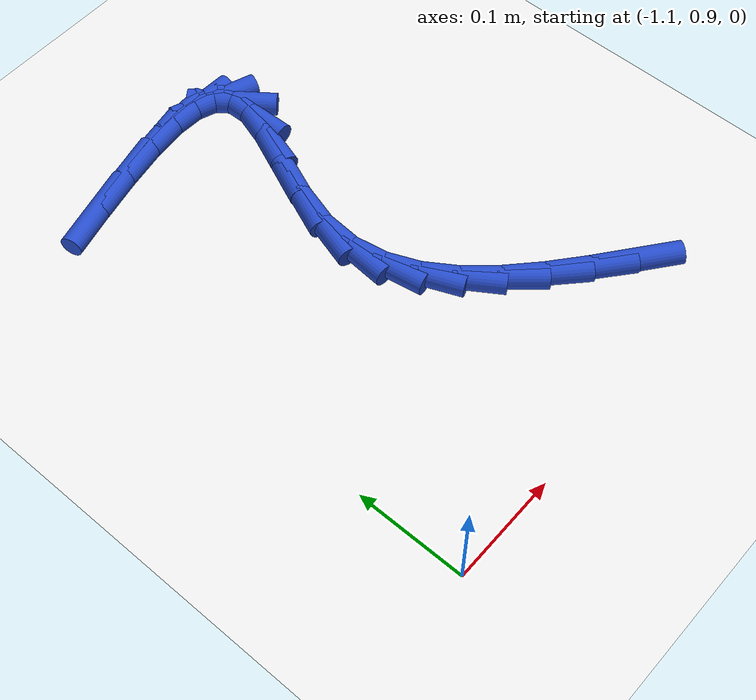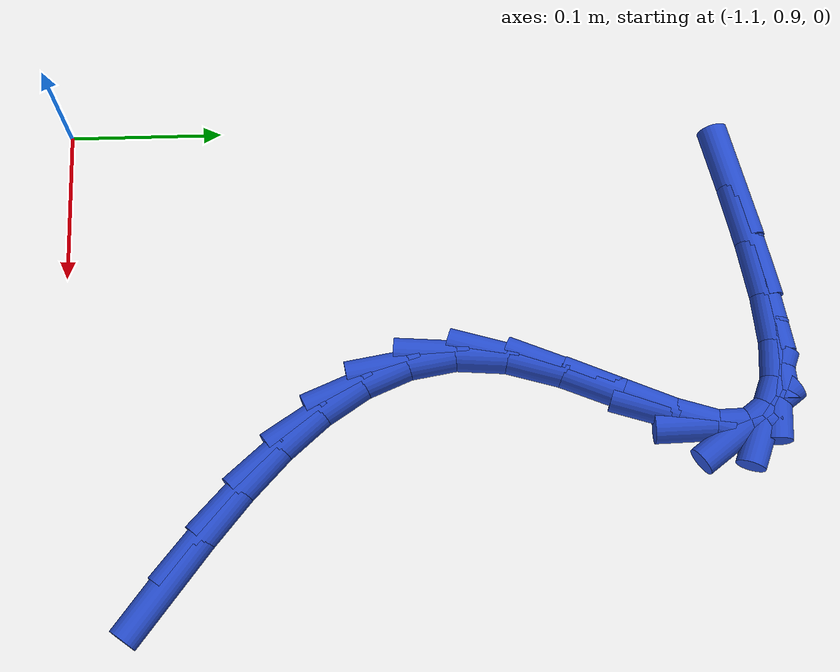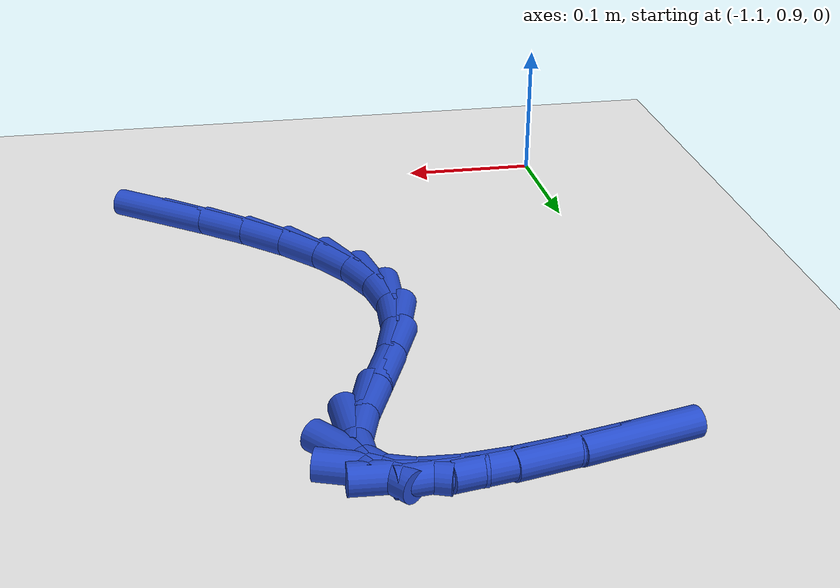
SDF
<sdf version="1.6">
 <world name="default">
  <model name="ground_plane">
   <static>1</static>
   <link name="link">
    <collision name="collision">
     <geometry><plane><normal>0 0 1</normal><size>100 100</size></plane></geometry>
     <surface><friction><ode><mu>100</mu><mu2>50</mu2></ode></friction></surface>
    </collision>
    <visual name="visual">
     <cast_shadows>0</cast_shadows>
     <geometry><plane><normal>0 0 1</normal><size>100 100</size></plane></geometry>
     <material>
      <script><uri>file://media/materials/scripts/gazebo.material</uri><name>Gazebo/WhiteGlow</name></script>
     </material>
    </visual>
   </link>
  </model>
  <model name="line">
   <link name="link_37">
    <pose>-0.7920803753061628 0.9666761364088811 0.01 0 1.57 -0.6551245771189139</pose>
    <collision name="collision">
     <geometry><cylinder><radius>0.01</radius><length>0.08</length></cylinder></geometry>
    </collision>
    <visual name="visual">
     <material>
      <script><name>Gazebo/Blue</name><uri>file://media/materials/scripts/gazebo.material</uri></script>
     </material>
     <geometry><cylinder><radius>0.01</radius><length>0.08</length></cylinder></geometry>
    </visual>
   </link>
   <link name="link_38">
    <pose>-0.823226996552622 0.9906067775972272 0.01 0 1.57 -0.6902624537019658</pose>
    <collision name="collision">
     <geometry><cylinder><radius>0.01</radius><length>0.08</length></cylinder></geometry>
    </collision>
    <visual name="visual">
     <material>
      <script><name>Gazebo/Blue</name><uri>file://media/materials/scripts/gazebo.material</uri></script>
     </material>
     <geometry><cylinder><radius>0.01</radius><length>0.08</length></cylinder></geometry>
    </visual>
   </link>
   <link name="link_39">
    <pose>-0.8525524185163205 1.0148230492595076 0.01 0 1.57 -0.7530060910809215</pose>
    <collision name="collision">
     <geometry><cylinder><radius>0.01</radius><length>0.08</length></cylinder></geometry>
    </collision>
    <visual name="visual">
     <material>
      <script><name>Gazebo/Blue</name><uri>file://media/materials/scripts/gazebo.material</uri></script>
     </material>
     <geometry><cylinder><radius>0.01</radius><length>0.08</length></cylinder></geometry>
    </visual>
   </link>
   <link name="link_40">
    <pose>-0.8790606209479246 1.0396672586340006 0.01 0 1.57 -0.8496166679970097</pose>
    <collision name="collision">
     <geometry><cylinder><radius>0.01</radius><length>0.08</length></cylinder></geometry>
    </collision>
    <visual name="visual">
     <material>
      <script><name>Gazebo/Blue</name><uri>file://media/materials/scripts/gazebo.material</uri></script>
     </material>
     <geometry><cylinder><radius>0.01</radius><length>0.08</length></cylinder></geometry>
    </visual>
   </link>
   <link name="link_41">
    <pose>-0.9017555835981016 1.0654817129589833 0.01 0 1.57 -0.9878887949472469</pose>
    <collision name="collision">
     <geometry><cylinder><radius>0.01</radius><length>0.08</length></cylinder></geometry>
    </collision>
    <visual name="visual">
     <material>
      <script><name>Gazebo/Blue</name><uri>file://media/materials/scripts/gazebo.material</uri></script>
     </material>
     <geometry><cylinder><radius>0.01</radius><length>0.08</length></cylinder></geometry>
    </visual>
   </link>
   <link name="link_42">
    <pose>-0.9196412862175176 1.092608719472734 0.01 0 1.57 -1.1734034912138087</pose>
    <collision name="collision">
     <geometry><cylinder><radius>0.01</radius><length>0.08</length></cylinder></geometry>
    </collision>
    <visual name="visual">
     <material>
      <script><name>Gazebo/Blue</name><uri>file://media/materials/scripts/gazebo.material</uri></script>
     </material>
     <geometry><cylinder><radius>0.01</radius><length>0.08</length></cylinder></geometry>
    </visual>
   </link>
   <link name="link_43">
    <pose>-0.9317217085568399 1.12139058541353 0.01 0 1.57 -1.400932324442134</pose>
    <collision name="collision">
     <geometry><cylinder><radius>0.01</radius><length>0.08</length></cylinder></geometry>
    </collision>
    <visual name="visual">
     <material>
      <script><name>Gazebo/Blue</name><uri>file://media/materials/scripts/gazebo.material</uri></script>
     </material>
     <geometry><cylinder><radius>0.01</radius><length>0.08</length></cylinder></geometry>
    </visual>
   </link>
   <link name="link_44">
    <pose>-0.9370008303667352 1.1521696180196497 0.01 0 1.57 1.4949063477040772</pose>
    <collision name="collision">
     <geometry><cylinder><radius>0.01</radius><length>0.08</length></cylinder></geometry>
    </collision>
    <visual name="visual">
     <material>
      <script><name>Gazebo/Blue</name><uri>file://media/materials/scripts/gazebo.material</uri></script>
     </material>
     <geometry><cylinder><radius>0.01</radius><length>0.08</length></cylinder></geometry>
    </visual>
   </link>
   <link name="link_45">
    <pose>-0.93448263139787 1.1852881245293698 0.01 0 1.57 1.2835616166285895</pose>
    <collision name="collision">
     <geometry><cylinder><radius>0.01</radius><length>0.08</length></cylinder></geometry>
    </collision>
    <visual name="visual">
     <material>
      <script><name>Gazebo/Blue</name><uri>file://media/materials/scripts/gazebo.material</uri></script>
     </material>
     <geometry><cylinder><radius>0.01</radius><length>0.08</length></cylinder></geometry>
    </visual>
   </link>
   <link name="link_46">
    <pose>-0.9240426888932335 1.2206293938082275 0.01 0 1.57 1.1787719265545076</pose>
    <collision name="collision">
     <geometry><cylinder><radius>0.01</radius><length>0.08</length></cylinder></geometry>
    </collision>
    <visual name="visual">
     <material>
      <script><name>Gazebo/Blue</name><uri>file://media/materials/scripts/gazebo.material</uri></script>
     </material>
     <geometry><cylinder><radius>0.01</radius><length>0.08</length></cylinder></geometry>
    </visual>
   </link>
   <link name="link_47">
    <pose>-0.9093973185417629 1.2560540270395273 0.01 0 1.57 1.165524495738626</pose>
    <collision name="collision">
     <geometry><cylinder><radius>0.01</radius><length>0.08</length></cylinder></geometry>
    </collision>
    <visual name="visual">
     <material>
      <script><name>Gazebo/Blue</name><uri>file://media/materials/scripts/gazebo.material</uri></script>
     </material>
     <geometry><cylinder><radius>0.01</radius><length>0.08</length></cylinder></geometry>
    </visual>
   </link>
   <link name="link_48">
    <pose>-0.895320430142908 1.2888656537173426 0.01 0 1.57 1.263280046463911</pose>
    <collision name="collision">
     <geometry><cylinder><radius>0.01</radius><length>0.08</length></cylinder></geometry>
    </collision>
    <visual name="visual">
     <material>
      <script><name>Gazebo/Blue</name><uri>file://media/materials/scripts/gazebo.material</uri></script>
     </material>
     <geometry><cylinder><radius>0.01</radius><length>0.08</length></cylinder></geometry>
    </visual>
   </link>
   <link name="link_49">
    <pose>-0.8865859657416556 1.3163678863539487 0.01 0 1.57 -1.545657544549913</pose>
    <collision name="collision">
     <geometry><cylinder><radius>0.01</radius><length>0.08</length></cylinder></geometry>
    </collision>
    <visual name="visual">
     <material>
      <script><name>Gazebo/Blue</name><uri>file://media/materials/scripts/gazebo.material</uri></script>
     </material>
     <geometry><cylinder><radius>0.01</radius><length>0.08</length></cylinder></geometry>
    </visual>
   </link>
   <link name="link_50">
    <pose>-0.8870900028530839 1.3364138426464844 0.01 0 1.57 -0.9189617225608825</pose>
    <collision name="collision">
     <geometry><cylinder><radius>0.01</radius><length>0.08</length></cylinder></geometry>
    </collision>
    <visual name="visual">
     <material>
      <script><name>Gazebo/Blue</name><uri>file://media/materials/scripts/gazebo.material</uri></script>
     </material>
     <geometry><cylinder><radius>0.01</radius><length>0.08</length></cylinder></geometry>
    </visual>
   </link>
   <link name="link_51">
    <pose>-0.8968917106142243 1.3492583788015724 0.01 0 1.57 -0.3472248283309166</pose>
    <collision name="collision">
     <geometry><cylinder><radius>0.01</radius><length>0.08</length></cylinder></geometry>
    </collision>
    <visual name="visual">
     <material>
      <script><name>Gazebo/Blue</name><uri>file://media/materials/scripts/gazebo.material</uri></script>
     </material>
     <geometry><cylinder><radius>0.01</radius><length>0.08</length></cylinder></geometry>
    </visual>
   </link>
   <link name="link_52">
    <pose>-0.9150022665005942 1.3558123484287097 0.01 0 1.57 -0.04614286182634578</pose>
    <collision name="collision">
     <geometry><cylinder><radius>0.01</radius><length>0.08</length></cylinder></geometry>
    </collision>
    <visual name="visual">
     <material>
      <script><name>Gazebo/Blue</name><uri>file://media/materials/scripts/gazebo.material</uri></script>
     </material>
     <geometry><cylinder><radius>0.01</radius><length>0.08</length></cylinder></geometry>
    </visual>
   </link>
   <link name="link_53">
    <pose>-0.9404328232543714 1.356986620619394 0.01 0 1.57 0.10335766089260554</pose>
    <collision name="collision">
     <geometry><cylinder><radius>0.01</radius><length>0.08</length></cylinder></geometry>
    </collision>
    <visual name="visual">
     <material>
      <script><name>Gazebo/Blue</name><uri>file://media/materials/scripts/gazebo.material</uri></script>
     </material>
     <geometry><cylinder><radius>0.01</radius><length>0.08</length></cylinder></geometry>
    </visual>
   </link>
   <link name="link_54">
    <pose>-0.9721945336177331 1.3536920644651236 0.01 0 1.57 0.18262613280172227</pose>
    <collision name="collision">
     <geometry><cylinder><radius>0.01</radius><length>0.08</length></cylinder></geometry>
    </collision>
    <visual name="visual">
     <material>
      <script><name>Gazebo/Blue</name><uri>file://media/materials/scripts/gazebo.material</uri></script>
     </material>
     <geometry><cylinder><radius>0.01</radius><length>0.08</length></cylinder></geometry>
    </visual>
   </link>
   <link name="link_55">
    <pose>-1.009298550332857 1.3468395490573972 0.01 0 1.57 0.2252523496765217</pose>
    <collision name="collision">
     <geometry><cylinder><radius>0.01</radius><length>0.08</length></cylinder></geometry>
    </collision>
    <visual name="visual">
     <material>
      <script><name>Gazebo/Blue</name><uri>file://media/materials/scripts/gazebo.material</uri></script>
     </material>
     <geometry><cylinder><radius>0.01</radius><length>0.08</length></cylinder></geometry>
    </visual>
   </link>
   <link name="link_56">
    <pose>-1.0507560261419209 1.3373399434877125 0.01 0 1.57 0.24561490205891764</pose>
    <collision name="collision">
     <geometry><cylinder><radius>0.01</radius><length>0.08</length></cylinder></geometry>
    </collision>
    <visual name="visual">
     <material>
      <script><name>Gazebo/Blue</name><uri>file://media/materials/scripts/gazebo.material</uri></script>
     </material>
     <geometry><cylinder><radius>0.01</radius><length>0.08</length></cylinder></geometry>
    </visual>
   </link>
  </model>
 </world>
</sdf>
